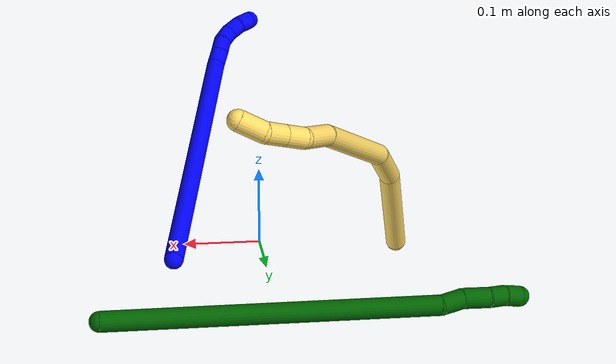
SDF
<sdf version="1.7">
 <world name="default">
  <model name="photoneo_s_sensor">
   <static>1</static>
   <pose>0 0 2 1.57079 1.57079 3.14159</pose>
   <link name="link">
    <inertial><mass>0.1</mass></inertial>
    <sensor name="sensor" type="depth">
     <update_rate>30</update_rate>
     <camera>
      <horizontal_fov>1.22</horizontal_fov>
      <image><width>1920</width><height>1200</height><format>B8G8R8</format></image>
      <clip><near>0.1</near><far>4</far></clip>
      <depth_camera><output>points</output></depth_camera>
     </camera>
     <plugin name="camera_plugin" filename="libgazebo_ros_depth_camera.so">
      <baseline>0.2</baseline>
      <alwaysOn>1</alwaysOn>
      <updateRate>0.0</updateRate>
      <cameraName>camera_ir</cameraName>
      <imageTopicName>/camera/color/image_raw</imageTopicName>
      <cameraInfoTopicName>/camera/color/camera_info</cameraInfoTopicName>
      <depthImageTopicName>/camera/depth/image_raw</depthImageTopicName>
      <depthImageCameraInfoTopicName>/camera/depth/camera_info</depthImageCameraInfoTopicName>
      <pointCloudTopicName>/camera/depth/points</pointCloudTopicName>
      <frameName>fr_optical</frameName>
      <pointCloudCutoff>0.1</pointCloudCutoff>
      <pointCloudCutoffMax>2.0</pointCloudCutoffMax>
      <distortionK1>0</distortionK1>
      <distortionK2>0</distortionK2>
      <distortionK3>0</distortionK3>
      <distortionT1>0</distortionT1>
      <distortionT2>0</distortionT2>
      <CxPrime>0</CxPrime>
      <Cx>0</Cx>
      <Cy>0</Cy>
      <focalLength>0</focalLength>
      <hackBaseline>0</hackBaseline>
     </plugin>
    </sensor>
   </link>
  </model>
  <model name="bin">
   <static>1</static>
   <link name="bottom">
    <collision name="collision-bottom">
     <pose>0 0 -0.01 0 -0 0</pose>
     <geometry><box><size>0.8 0.6 0.02</size></box></geometry>
     <surface>
      <friction><ode><mu>100</mu><mu2>100</mu2></ode></friction>
      <contact><collide_bitmask>65535</collide_bitmask></contact>
     </surface>
    </collision>
   </link>
   <link name="west_wall">
    <collision name="collision-west_wall">
     <pose>-0.41 0 0.1 0 -0 0</pose>
     <geometry><box><size>0.02 0.6 0.2</size></box></geometry>
     <surface>
      <friction><ode><mu>100</mu><mu2>100</mu2></ode></friction>
      <contact><collide_bitmask>65535</collide_bitmask></contact>
     </surface>
    </collision>
   </link>
   <link name="east_wall">
    <collision name="collision-east_wall">
     <pose>0.41 0 0.1 0 -0 0</pose>
     <geometry><box><size>0.02 0.6 0.2</size></box></geometry>
     <surface>
      <friction><ode><mu>100</mu><mu2>100</mu2></ode></friction>
      <contact><collide_bitmask>65535</collide_bitmask></contact>
     </surface>
    </collision>
   </link>
   <link name="south_wall">
    <collision name="collision-south_wall">
     <pose>0 -0.31 0.1 0 -0 0</pose>
     <geometry><box><size>0.8 0.02 0.2</size></box></geometry>
     <surface>
      <friction><ode><mu>100</mu><mu2>100</mu2></ode></friction>
      <contact><collide_bitmask>65535</collide_bitmask></contact>
     </surface>
    </collision>
   </link>
   <link name="north_wall">
    <collision name="collision-north_wall">
     <pose>0 0.31 0.1 0 -0 0</pose>
     <geometry><box><size>0.8 0.02 0.2</size></box></geometry>
     <surface>
      <friction><ode><mu>100</mu><mu2>100</mu2></ode></friction>
      <contact><collide_bitmask>65535</collide_bitmask></contact>
     </surface>
    </collision>
   </link>
  </model>
  <model name="1">
   <static>0</static>
   <link name="1">
    <collision name="collision-cylinder-e_1_1_4">
     <pose>-0.019477 -0.105853 0.166045 0.567536 -0.09859 -0.028774</pose>
     <geometry><cylinder><radius>0.0125</radius><length>0.395754</length></cylinder></geometry>
     <surface>
      <friction><ode><mu>1.16</mu><mu2>1.16</mu2><slip1>0</slip1><slip2>0</slip2></ode></friction>
      <contact><ode><kp>1e+06</kp><kd>1</kd><max_vel>0</max_vel><min_depth>0.001</min_depth></ode></contact>
     </surface>
    </collision>
    <visual name="visual-cylinder-e_1_1_4">
     <pose>-0.019477 -0.105853 0.166045 0.567536 -0.09859 -0.028774</pose>
     <geometry><cylinder><radius>0.0125</radius><length>0.395754</length></cylinder></geometry>
     <material><ambient>0 0 1 1</ambient></material>
    </visual>
    <collision name="collision-cylinder-e_2_4_5">
     <pose>-0.043565 -0.217752 0.340475 0.624657 -0.419572 -0.137286</pose>
     <geometry><cylinder><radius>0.0125</radius><length>0.022637</length></cylinder></geometry>
     <surface>
      <friction><ode><mu>1.16</mu><mu2>1.16</mu2><slip1>0</slip1><slip2>0</slip2></ode></friction>
      <contact><ode><kp>1e+06</kp><kd>1</kd><max_vel>0</max_vel><min_depth>0.001</min_depth></ode></contact>
     </surface>
    </collision>
    <visual name="visual-cylinder-e_2_4_5">
     <pose>-0.043565 -0.217752 0.340475 0.624657 -0.419572 -0.137286</pose>
     <geometry><cylinder><radius>0.0125</radius><length>0.022637</length></cylinder></geometry>
     <material><ambient>0 0 1 1</ambient></material>
    </visual>
    <collision name="collision-cylinder-e_3_5_6">
     <pose>-0.052027 -0.229057 0.356844 0.582485 -0.382924 -0.116081</pose>
     <geometry><cylinder><radius>0.0125</radius><length>0.020616</length></cylinder></geometry>
     <surface>
      <friction><ode><mu>1.16</mu><mu2>1.16</mu2><slip1>0</slip1><slip2>0</slip2></ode></friction>
      <contact><ode><kp>1e+06</kp><kd>1</kd><max_vel>0</max_vel><min_depth>0.001</min_depth></ode></contact>
     </surface>
    </collision>
    <visual name="visual-cylinder-e_3_5_6">
     <pose>-0.052027 -0.229057 0.356844 0.582485 -0.382924 -0.116081</pose>
     <geometry><cylinder><radius>0.0125</radius><length>0.020616</length></cylinder></geometry>
     <material><ambient>0 0 1 1</ambient></material>
    </visual>
    <collision name="collision-cylinder-e_4_6_7">
     <pose>-0.058183 -0.242253 0.371256 0.890113 -0.22199 -0.10622</pose>
     <geometry><cylinder><radius>0.0125</radius><length>0.020939</length></cylinder></geometry>
     <surface>
      <friction><ode><mu>1.16</mu><mu2>1.16</mu2><slip1>0</slip1><slip2>0</slip2></ode></friction>
      <contact><ode><kp>1e+06</kp><kd>1</kd><max_vel>0</max_vel><min_depth>0.001</min_depth></ode></contact>
     </surface>
    </collision>
    <visual name="visual-cylinder-e_4_6_7">
     <pose>-0.058183 -0.242253 0.371256 0.890113 -0.22199 -0.10622</pose>
     <geometry><cylinder><radius>0.0125</radius><length>0.020939</length></cylinder></geometry>
     <material><ambient>0 0 1 1</ambient></material>
    </visual>
    <collision name="collision-cylinder-e_5_7_8">
     <pose>-0.064716 -0.258804 0.380503 1.25443 -0.436388 -0.318711</pose>
     <geometry><cylinder><radius>0.0125</radius><length>0.020004</length></cylinder></geometry>
     <surface>
      <friction><ode><mu>1.16</mu><mu2>1.16</mu2><slip1>0</slip1><slip2>0</slip2></ode></friction>
      <contact><ode><kp>1e+06</kp><kd>1</kd><max_vel>0</max_vel><min_depth>0.001</min_depth></ode></contact>
     </surface>
    </collision>
    <visual name="visual-cylinder-e_5_7_8">
     <pose>-0.064716 -0.258804 0.380503 1.25443 -0.436388 -0.318711</pose>
     <geometry><cylinder><radius>0.0125</radius><length>0.020004</length></cylinder></geometry>
     <material><ambient>0 0 1 1</ambient></material>
    </visual>
    <collision name="collision-cylinder-e_6_8_2">
     <pose>-0.070912 -0.27694 0.385771 1.31911 -0.197647 -0.153453</pose>
     <geometry><cylinder><radius>0.0125</radius><length>0.020051</length></cylinder></geometry>
     <surface>
      <friction><ode><mu>1.16</mu><mu2>1.16</mu2><slip1>0</slip1><slip2>0</slip2></ode></friction>
      <contact><ode><kp>1e+06</kp><kd>1</kd><max_vel>0</max_vel><min_depth>0.001</min_depth></ode></contact>
     </surface>
    </collision>
    <visual name="visual-cylinder-e_6_8_2">
     <pose>-0.070912 -0.27694 0.385771 1.31911 -0.197647 -0.153453</pose>
     <geometry><cylinder><radius>0.0125</radius><length>0.020051</length></cylinder></geometry>
     <material><ambient>0 0 1 1</ambient></material>
    </visual>
    <collision name="collision-sphere-2">
     <pose>-0.072881 -0.28646 0.388219 0 -0 0</pose>
     <geometry><sphere><radius>0.0125</radius></sphere></geometry>
     <surface>
      <friction><ode><mu>1.16</mu><mu2>1.16</mu2><slip1>0</slip1><slip2>0</slip2></ode></friction>
      <contact><ode><kp>1e+06</kp><kd>1</kd><max_vel>0</max_vel><min_depth>0.001</min_depth></ode></contact>
     </surface>
    </collision>
    <visual name="visual-sphere-2">
     <pose>-0.072881 -0.28646 0.388219 0 -0 0</pose>
     <geometry><sphere><radius>0.0125</radius></sphere></geometry>
     <material><ambient>0 0 1 1</ambient></material>
    </visual>
    <collision name="collision-sphere-4">
     <pose>-0.038954 -0.211707 0.33209 0 -0 0</pose>
     <geometry><sphere><radius>0.0125</radius></sphere></geometry>
     <surface>
      <friction><ode><mu>1.16</mu><mu2>1.16</mu2><slip1>0</slip1><slip2>0</slip2></ode></friction>
      <contact><ode><kp>1e+06</kp><kd>1</kd><max_vel>0</max_vel><min_depth>0.001</min_depth></ode></contact>
     </surface>
    </collision>
    <visual name="visual-sphere-4">
     <pose>-0.038954 -0.211707 0.33209 0 -0 0</pose>
     <geometry><sphere><radius>0.0125</radius></sphere></geometry>
     <material><ambient>0 0 1 1</ambient></material>
    </visual>
    <collision name="collision-sphere-1">
     <geometry><sphere><radius>0.0125</radius></sphere></geometry>
     <surface>
      <friction><ode><mu>1.16</mu><mu2>1.16</mu2><slip1>0</slip1><slip2>0</slip2></ode></friction>
      <contact><ode><kp>1e+06</kp><kd>1</kd><max_vel>0</max_vel><min_depth>0.001</min_depth></ode></contact>
     </surface>
    </collision>
    <visual name="visual-sphere-1">
     <geometry><sphere><radius>0.0125</radius></sphere></geometry>
     <material><ambient>0 0 1 1</ambient></material>
    </visual>
    <collision name="collision-sphere-8">
     <pose>-0.068944 -0.267419 0.383323 0 -0 0</pose>
     <geometry><sphere><radius>0.0125</radius></sphere></geometry>
     <surface>
      <friction><ode><mu>1.16</mu><mu2>1.16</mu2><slip1>0</slip1><slip2>0</slip2></ode></friction>
      <contact><ode><kp>1e+06</kp><kd>1</kd><max_vel>0</max_vel><min_depth>0.001</min_depth></ode></contact>
     </surface>
    </collision>
    <visual name="visual-sphere-8">
     <pose>-0.068944 -0.267419 0.383323 0 -0 0</pose>
     <geometry><sphere><radius>0.0125</radius></sphere></geometry>
     <material><ambient>0 0 1 1</ambient></material>
    </visual>
    <collision name="collision-sphere-5">
     <pose>-0.048176 -0.223797 0.34886 0 -0 0</pose>
     <geometry><sphere><radius>0.0125</radius></sphere></geometry>
     <surface>
      <friction><ode><mu>1.16</mu><mu2>1.16</mu2><slip1>0</slip1><slip2>0</slip2></ode></friction>
      <contact><ode><kp>1e+06</kp><kd>1</kd><max_vel>0</max_vel><min_depth>0.001</min_depth></ode></contact>
     </surface>
    </collision>
    <visual name="visual-sphere-5">
     <pose>-0.048176 -0.223797 0.34886 0 -0 0</pose>
     <geometry><sphere><radius>0.0125</radius></sphere></geometry>
     <material><ambient>0 0 1 1</ambient></material>
    </visual>
    <collision name="collision-sphere-6">
     <pose>-0.055878 -0.234316 0.364829 0 -0 0</pose>
     <geometry><sphere><radius>0.0125</radius></sphere></geometry>
     <surface>
      <friction><ode><mu>1.16</mu><mu2>1.16</mu2><slip1>0</slip1><slip2>0</slip2></ode></friction>
      <contact><ode><kp>1e+06</kp><kd>1</kd><max_vel>0</max_vel><min_depth>0.001</min_depth></ode></contact>
     </surface>
    </collision>
    <visual name="visual-sphere-6">
     <pose>-0.055878 -0.234316 0.364829 0 -0 0</pose>
     <geometry><sphere><radius>0.0125</radius></sphere></geometry>
     <material><ambient>0 0 1 1</ambient></material>
    </visual>
    <collision name="collision-sphere-7">
     <pose>-0.060489 -0.250189 0.377683 0 -0 0</pose>
     <geometry><sphere><radius>0.0125</radius></sphere></geometry>
     <surface>
      <friction><ode><mu>1.16</mu><mu2>1.16</mu2><slip1>0</slip1><slip2>0</slip2></ode></friction>
      <contact><ode><kp>1e+06</kp><kd>1</kd><max_vel>0</max_vel><min_depth>0.001</min_depth></ode></contact>
     </surface>
    </collision>
    <visual name="visual-sphere-7">
     <pose>-0.060489 -0.250189 0.377683 0 -0 0</pose>
     <geometry><sphere><radius>0.0125</radius></sphere></geometry>
     <material><ambient>0 0 1 1</ambient></material>
    </visual>
    <inertial>
     <pose>-0.027403 -0.134692 0.207794 0 -0 0</pose>
     <mass>0.5</mass>
     <inertia>
      <ixx>0.005006</ixx>
      <ixy>0</ixy>
      <ixz>0</ixz>
      <iyy>0.004208</iyy>
      <iyz>0</iyz>
      <izz>0.00332</izz>
     </inertia>
    </inertial>
   </link>
   <pose>0.116937 0.088516 0.011497 0.10706 1.12158 -1.03496</pose>
  </model>
  <model name="5">
   <static>0</static>
   <link name="5">
    <collision name="collision-cylinder-e_1_1_4">
     <pose>-0.002547 0.000546 0.082357 -0.00663 -0.030918 0.000103</pose>
     <geometry><cylinder><radius>0.0125</radius><length>0.164797</length></cylinder></geometry>
     <surface>
      <friction><ode><mu>1.16</mu><mu2>1.16</mu2><slip1>0</slip1><slip2>0</slip2></ode></friction>
      <contact><ode><kp>1e+06</kp><kd>1</kd><max_vel>0</max_vel><min_depth>0.001</min_depth></ode></contact>
     </surface>
    </collision>
    <visual name="visual-cylinder-e_1_1_4">
     <pose>-0.002547 0.000546 0.082357 -0.00663 -0.030918 0.000103</pose>
     <geometry><cylinder><radius>0.0125</radius><length>0.164797</length></cylinder></geometry>
     <material><ambient>1 0.858824 0.4 1</ambient></material>
    </visual>
    <collision name="collision-cylinder-e_2_4_5">
     <pose>-0.00467 0.009712 0.199025 -0.246144 0.011998 -0.001484</pose>
     <geometry><cylinder><radius>0.0125</radius><length>0.070757</length></cylinder></geometry>
     <surface>
      <friction><ode><mu>1.16</mu><mu2>1.16</mu2><slip1>0</slip1><slip2>0</slip2></ode></friction>
      <contact><ode><kp>1e+06</kp><kd>1</kd><max_vel>0</max_vel><min_depth>0.001</min_depth></ode></contact>
     </surface>
    </collision>
    <visual name="visual-cylinder-e_2_4_5">
     <pose>-0.00467 0.009712 0.199025 -0.246144 0.011998 -0.001484</pose>
     <geometry><cylinder><radius>0.0125</radius><length>0.070757</length></cylinder></geometry>
     <material><ambient>1 0.858824 0.4 1</ambient></material>
    </visual>
    <collision name="collision-cylinder-e_3_5_6">
     <pose>0.007532 0.050425 0.29118 -0.506527 0.176186 -0.045711</pose>
     <geometry><cylinder><radius>0.0125</radius><length>0.134385</length></cylinder></geometry>
     <surface>
      <friction><ode><mu>1.16</mu><mu2>1.16</mu2><slip1>0</slip1><slip2>0</slip2></ode></friction>
      <contact><ode><kp>1e+06</kp><kd>1</kd><max_vel>0</max_vel><min_depth>0.001</min_depth></ode></contact>
     </surface>
    </collision>
    <visual name="visual-cylinder-e_3_5_6">
     <pose>0.007532 0.050425 0.29118 -0.506527 0.176186 -0.045711</pose>
     <geometry><cylinder><radius>0.0125</radius><length>0.134385</length></cylinder></geometry>
     <material><ambient>1 0.858824 0.4 1</ambient></material>
    </visual>
    <collision name="collision-cylinder-e_4_6_7">
     <pose>0.023495 0.098132 0.365142 -0.769539 0.184448 -0.07487</pose>
     <geometry><cylinder><radius>0.0125</radius><length>0.045652</length></cylinder></geometry>
     <surface>
      <friction><ode><mu>1.16</mu><mu2>1.16</mu2><slip1>0</slip1><slip2>0</slip2></ode></friction>
      <contact><ode><kp>1e+06</kp><kd>1</kd><max_vel>0</max_vel><min_depth>0.001</min_depth></ode></contact>
     </surface>
    </collision>
    <visual name="visual-cylinder-e_4_6_7">
     <pose>0.023495 0.098132 0.365142 -0.769539 0.184448 -0.07487</pose>
     <geometry><cylinder><radius>0.0125</radius><length>0.045652</length></cylinder></geometry>
     <material><ambient>1 0.858824 0.4 1</ambient></material>
    </visual>
    <collision name="collision-cylinder-e_5_7_8">
     <pose>0.035353 0.120652 0.38934 -0.707216 0.625083 -0.237429</pose>
     <geometry><cylinder><radius>0.0125</radius><length>0.026219</length></cylinder></geometry>
     <surface>
      <friction><ode><mu>1.16</mu><mu2>1.16</mu2><slip1>0</slip1><slip2>0</slip2></ode></friction>
      <contact><ode><kp>1e+06</kp><kd>1</kd><max_vel>0</max_vel><min_depth>0.001</min_depth></ode></contact>
     </surface>
    </collision>
    <visual name="visual-cylinder-e_5_7_8">
     <pose>0.035353 0.120652 0.38934 -0.707216 0.625083 -0.237429</pose>
     <geometry><cylinder><radius>0.0125</radius><length>0.026219</length></cylinder></geometry>
     <material><ambient>1 0.858824 0.4 1</ambient></material>
    </visual>
    <collision name="collision-cylinder-e_6_8_9">
     <pose>0.050088 0.134484 0.405693 -0.697005 0.579719 -0.215892</pose>
     <geometry><cylinder><radius>0.0125</radius><length>0.025789</length></cylinder></geometry>
     <surface>
      <friction><ode><mu>1.16</mu><mu2>1.16</mu2><slip1>0</slip1><slip2>0</slip2></ode></friction>
      <contact><ode><kp>1e+06</kp><kd>1</kd><max_vel>0</max_vel><min_depth>0.001</min_depth></ode></contact>
     </surface>
    </collision>
    <visual name="visual-cylinder-e_6_8_9">
     <pose>0.050088 0.134484 0.405693 -0.697005 0.579719 -0.215892</pose>
     <geometry><cylinder><radius>0.0125</radius><length>0.025789</length></cylinder></geometry>
     <material><ambient>1 0.858824 0.4 1</ambient></material>
    </visual>
    <collision name="collision-cylinder-e_7_9_2">
     <pose>0.070549 0.14449 0.422535 -0.345196 0.97378 -0.184062</pose>
     <geometry><cylinder><radius>0.0125</radius><length>0.0324</length></cylinder></geometry>
     <surface>
      <friction><ode><mu>1.16</mu><mu2>1.16</mu2><slip1>0</slip1><slip2>0</slip2></ode></friction>
      <contact><ode><kp>1e+06</kp><kd>1</kd><max_vel>0</max_vel><min_depth>0.001</min_depth></ode></contact>
     </surface>
    </collision>
    <visual name="visual-cylinder-e_7_9_2">
     <pose>0.070549 0.14449 0.422535 -0.345196 0.97378 -0.184062</pose>
     <geometry><cylinder><radius>0.0125</radius><length>0.0324</length></cylinder></geometry>
     <material><ambient>1 0.858824 0.4 1</ambient></material>
    </visual>
    <collision name="collision-sphere-2">
     <pose>0.083947 0.147572 0.431105 0 -0 0</pose>
     <geometry><sphere><radius>0.0125</radius></sphere></geometry>
     <surface>
      <friction><ode><mu>1.16</mu><mu2>1.16</mu2><slip1>0</slip1><slip2>0</slip2></ode></friction>
      <contact><ode><kp>1e+06</kp><kd>1</kd><max_vel>0</max_vel><min_depth>0.001</min_depth></ode></contact>
     </surface>
    </collision>
    <visual name="visual-sphere-2">
     <pose>0.083947 0.147572 0.431105 0 -0 0</pose>
     <geometry><sphere><radius>0.0125</radius></sphere></geometry>
     <material><ambient>1 0.858824 0.4 1</ambient></material>
    </visual>
    <collision name="collision-sphere-9">
     <pose>0.057151 0.141409 0.413964 0 -0 0</pose>
     <geometry><sphere><radius>0.0125</radius></sphere></geometry>
     <surface>
      <friction><ode><mu>1.16</mu><mu2>1.16</mu2><slip1>0</slip1><slip2>0</slip2></ode></friction>
      <contact><ode><kp>1e+06</kp><kd>1</kd><max_vel>0</max_vel><min_depth>0.001</min_depth></ode></contact>
     </surface>
    </collision>
    <visual name="visual-sphere-9">
     <pose>0.057151 0.141409 0.413964 0 -0 0</pose>
     <geometry><sphere><radius>0.0125</radius></sphere></geometry>
     <material><ambient>1 0.858824 0.4 1</ambient></material>
    </visual>
    <collision name="collision-sphere-4">
     <pose>-0.005094 0.001092 0.164715 0 -0 0</pose>
     <geometry><sphere><radius>0.0125</radius></sphere></geometry>
     <surface>
      <friction><ode><mu>1.16</mu><mu2>1.16</mu2><slip1>0</slip1><slip2>0</slip2></ode></friction>
      <contact><ode><kp>1e+06</kp><kd>1</kd><max_vel>0</max_vel><min_depth>0.001</min_depth></ode></contact>
     </surface>
    </collision>
    <visual name="visual-sphere-4">
     <pose>-0.005094 0.001092 0.164715 0 -0 0</pose>
     <geometry><sphere><radius>0.0125</radius></sphere></geometry>
     <material><ambient>1 0.858824 0.4 1</ambient></material>
    </visual>
    <collision name="collision-sphere-1">
     <geometry><sphere><radius>0.0125</radius></sphere></geometry>
     <surface>
      <friction><ode><mu>1.16</mu><mu2>1.16</mu2><slip1>0</slip1><slip2>0</slip2></ode></friction>
      <contact><ode><kp>1e+06</kp><kd>1</kd><max_vel>0</max_vel><min_depth>0.001</min_depth></ode></contact>
     </surface>
    </collision>
    <visual name="visual-sphere-1">
     <geometry><sphere><radius>0.0125</radius></sphere></geometry>
     <material><ambient>1 0.858824 0.4 1</ambient></material>
    </visual>
    <collision name="collision-sphere-8">
     <pose>0.043024 0.127559 0.397421 0 -0 0</pose>
     <geometry><sphere><radius>0.0125</radius></sphere></geometry>
     <surface>
      <friction><ode><mu>1.16</mu><mu2>1.16</mu2><slip1>0</slip1><slip2>0</slip2></ode></friction>
      <contact><ode><kp>1e+06</kp><kd>1</kd><max_vel>0</max_vel><min_depth>0.001</min_depth></ode></contact>
     </surface>
    </collision>
    <visual name="visual-sphere-8">
     <pose>0.043024 0.127559 0.397421 0 -0 0</pose>
     <geometry><sphere><radius>0.0125</radius></sphere></geometry>
     <material><ambient>1 0.858824 0.4 1</ambient></material>
    </visual>
    <collision name="collision-sphere-5">
     <pose>-0.004245 0.018332 0.233334 0 -0 0</pose>
     <geometry><sphere><radius>0.0125</radius></sphere></geometry>
     <surface>
      <friction><ode><mu>1.16</mu><mu2>1.16</mu2><slip1>0</slip1><slip2>0</slip2></ode></friction>
      <contact><ode><kp>1e+06</kp><kd>1</kd><max_vel>0</max_vel><min_depth>0.001</min_depth></ode></contact>
     </surface>
    </collision>
    <visual name="visual-sphere-5">
     <pose>-0.004245 0.018332 0.233334 0 -0 0</pose>
     <geometry><sphere><radius>0.0125</radius></sphere></geometry>
     <material><ambient>1 0.858824 0.4 1</ambient></material>
    </visual>
    <collision name="collision-sphere-6">
     <pose>0.019309 0.082518 0.349026 0 -0 0</pose>
     <geometry><sphere><radius>0.0125</radius></sphere></geometry>
     <surface>
      <friction><ode><mu>1.16</mu><mu2>1.16</mu2><slip1>0</slip1><slip2>0</slip2></ode></friction>
      <contact><ode><kp>1e+06</kp><kd>1</kd><max_vel>0</max_vel><min_depth>0.001</min_depth></ode></contact>
     </surface>
    </collision>
    <visual name="visual-sphere-6">
     <pose>0.019309 0.082518 0.349026 0 -0 0</pose>
     <geometry><sphere><radius>0.0125</radius></sphere></geometry>
     <material><ambient>1 0.858824 0.4 1</ambient></material>
    </visual>
    <collision name="collision-sphere-7">
     <pose>0.027682 0.113745 0.381258 0 -0 0</pose>
     <geometry><sphere><radius>0.0125</radius></sphere></geometry>
     <surface>
      <friction><ode><mu>1.16</mu><mu2>1.16</mu2><slip1>0</slip1><slip2>0</slip2></ode></friction>
      <contact><ode><kp>1e+06</kp><kd>1</kd><max_vel>0</max_vel><min_depth>0.001</min_depth></ode></contact>
     </surface>
    </collision>
    <visual name="visual-sphere-7">
     <pose>0.027682 0.113745 0.381258 0 -0 0</pose>
     <geometry><sphere><radius>0.0125</radius></sphere></geometry>
     <material><ambient>1 0.858824 0.4 1</ambient></material>
    </visual>
    <inertial>
     <pose>0.011678 0.046693 0.235631 0 -0 0</pose>
     <mass>0.5</mass>
     <inertia>
      <ixx>0.000626</ixx>
      <ixy>0</ixy>
      <ixz>0</ixz>
      <iyy>0.000608</iyy>
      <iyz>0</iyz>
      <izz>-0.000119</izz>
     </inertia>
    </inertial>
   </link>
   <pose>-0.174355 0.052865 0.011497 -0.676471 -0.205254 -0.547287</pose>
  </model>
  <model name="6">
   <static>0</static>
   <link name="6">
    <collision name="collision-cylinder-e_1_1_4">
     <pose>-0.179002 -0.042706 0.077264 0.504932 -1.11262 -0.318112</pose>
     <geometry><cylinder><radius>0.0125</radius><length>0.399175</length></cylinder></geometry>
     <surface>
      <friction><ode><mu>1.16</mu><mu2>1.16</mu2><slip1>0</slip1><slip2>0</slip2></ode></friction>
      <contact><ode><kp>1e+06</kp><kd>1</kd><max_vel>0</max_vel><min_depth>0.001</min_depth></ode></contact>
     </surface>
    </collision>
    <visual name="visual-cylinder-e_1_1_4">
     <pose>-0.179002 -0.042706 0.077264 0.504932 -1.11262 -0.318112</pose>
     <geometry><cylinder><radius>0.0125</radius><length>0.399175</length></cylinder></geometry>
     <material><ambient>0 0.392157 0.003922 1</ambient></material>
    </visual>
    <collision name="collision-cylinder-e_2_4_5">
     <pose>-0.368834 -0.085949 0.162725 0.065565 -0.921867 -0.032569</pose>
     <geometry><cylinder><radius>0.0125</radius><length>0.027185</length></cylinder></geometry>
     <surface>
      <friction><ode><mu>1.16</mu><mu2>1.16</mu2><slip1>0</slip1><slip2>0</slip2></ode></friction>
      <contact><ode><kp>1e+06</kp><kd>1</kd><max_vel>0</max_vel><min_depth>0.001</min_depth></ode></contact>
     </surface>
    </collision>
    <visual name="visual-cylinder-e_2_4_5">
     <pose>-0.368834 -0.085949 0.162725 0.065565 -0.921867 -0.032569</pose>
     <geometry><cylinder><radius>0.0125</radius><length>0.027185</length></cylinder></geometry>
     <material><ambient>0 0.392157 0.003922 1</ambient></material>
    </visual>
    <collision name="collision-cylinder-e_3_5_6">
     <pose>-0.393636 -0.090753 0.178695 0.501829 -1.00534 -0.27999</pose>
     <geometry><cylinder><radius>0.0125</radius><length>0.033096</length></cylinder></geometry>
     <surface>
      <friction><ode><mu>1.16</mu><mu2>1.16</mu2><slip1>0</slip1><slip2>0</slip2></ode></friction>
      <contact><ode><kp>1e+06</kp><kd>1</kd><max_vel>0</max_vel><min_depth>0.001</min_depth></ode></contact>
     </surface>
    </collision>
    <visual name="visual-cylinder-e_3_5_6">
     <pose>-0.393636 -0.090753 0.178695 0.501829 -1.00534 -0.27999</pose>
     <geometry><cylinder><radius>0.0125</radius><length>0.033096</length></cylinder></geometry>
     <material><ambient>0 0.392157 0.003922 1</ambient></material>
    </visual>
    <collision name="collision-cylinder-e_4_6_7">
     <pose>-0.415368 -0.09726 0.192721 0.344242 -0.862767 -0.159697</pose>
     <geometry><cylinder><radius>0.0125</radius><length>0.02043</length></cylinder></geometry>
     <surface>
      <friction><ode><mu>1.16</mu><mu2>1.16</mu2><slip1>0</slip1><slip2>0</slip2></ode></friction>
      <contact><ode><kp>1e+06</kp><kd>1</kd><max_vel>0</max_vel><min_depth>0.001</min_depth></ode></contact>
     </surface>
    </collision>
    <visual name="visual-cylinder-e_4_6_7">
     <pose>-0.415368 -0.09726 0.192721 0.344242 -0.862767 -0.159697</pose>
     <geometry><cylinder><radius>0.0125</radius><length>0.02043</length></cylinder></geometry>
     <material><ambient>0 0.392157 0.003922 1</ambient></material>
    </visual>
    <collision name="collision-cylinder-e_5_7_2">
     <pose>-0.430248 -0.103401 0.204911 0.581186 -0.786695 -0.24694</pose>
     <geometry><cylinder><radius>0.0125</radius><length>0.020113</length></cylinder></geometry>
     <surface>
      <friction><ode><mu>1.16</mu><mu2>1.16</mu2><slip1>0</slip1><slip2>0</slip2></ode></friction>
      <contact><ode><kp>1e+06</kp><kd>1</kd><max_vel>0</max_vel><min_depth>0.001</min_depth></ode></contact>
     </surface>
    </collision>
    <visual name="visual-cylinder-e_5_7_2">
     <pose>-0.430248 -0.103401 0.204911 0.581186 -0.786695 -0.24694</pose>
     <geometry><cylinder><radius>0.0125</radius><length>0.020113</length></cylinder></geometry>
     <material><ambient>0 0.392157 0.003922 1</ambient></material>
    </visual>
    <collision name="collision-sphere-2">
     <pose>-0.437368 -0.1073 0.210846 0 -0 0</pose>
     <geometry><sphere><radius>0.0125</radius></sphere></geometry>
     <surface>
      <friction><ode><mu>1.16</mu><mu2>1.16</mu2><slip1>0</slip1><slip2>0</slip2></ode></friction>
      <contact><ode><kp>1e+06</kp><kd>1</kd><max_vel>0</max_vel><min_depth>0.001</min_depth></ode></contact>
     </surface>
    </collision>
    <visual name="visual-sphere-2">
     <pose>-0.437368 -0.1073 0.210846 0 -0 0</pose>
     <geometry><sphere><radius>0.0125</radius></sphere></geometry>
     <material><ambient>0 0.392157 0.003922 1</ambient></material>
    </visual>
    <collision name="collision-sphere-7">
     <pose>-0.423128 -0.099501 0.198975 0 -0 0</pose>
     <geometry><sphere><radius>0.0125</radius></sphere></geometry>
     <surface>
      <friction><ode><mu>1.16</mu><mu2>1.16</mu2><slip1>0</slip1><slip2>0</slip2></ode></friction>
      <contact><ode><kp>1e+06</kp><kd>1</kd><max_vel>0</max_vel><min_depth>0.001</min_depth></ode></contact>
     </surface>
    </collision>
    <visual name="visual-sphere-7">
     <pose>-0.423128 -0.099501 0.198975 0 -0 0</pose>
     <geometry><sphere><radius>0.0125</radius></sphere></geometry>
     <material><ambient>0 0.392157 0.003922 1</ambient></material>
    </visual>
    <collision name="collision-sphere-6">
     <pose>-0.407608 -0.095018 0.186468 0 -0 0</pose>
     <geometry><sphere><radius>0.0125</radius></sphere></geometry>
     <surface>
      <friction><ode><mu>1.16</mu><mu2>1.16</mu2><slip1>0</slip1><slip2>0</slip2></ode></friction>
      <contact><ode><kp>1e+06</kp><kd>1</kd><max_vel>0</max_vel><min_depth>0.001</min_depth></ode></contact>
     </surface>
    </collision>
    <visual name="visual-sphere-6">
     <pose>-0.407608 -0.095018 0.186468 0 -0 0</pose>
     <geometry><sphere><radius>0.0125</radius></sphere></geometry>
     <material><ambient>0 0.392157 0.003922 1</ambient></material>
    </visual>
    <collision name="collision-sphere-5">
     <pose>-0.379664 -0.086488 0.170921 0 -0 0</pose>
     <geometry><sphere><radius>0.0125</radius></sphere></geometry>
     <surface>
      <friction><ode><mu>1.16</mu><mu2>1.16</mu2><slip1>0</slip1><slip2>0</slip2></ode></friction>
      <contact><ode><kp>1e+06</kp><kd>1</kd><max_vel>0</max_vel><min_depth>0.001</min_depth></ode></contact>
     </surface>
    </collision>
    <visual name="visual-sphere-5">
     <pose>-0.379664 -0.086488 0.170921 0 -0 0</pose>
     <geometry><sphere><radius>0.0125</radius></sphere></geometry>
     <material><ambient>0 0.392157 0.003922 1</ambient></material>
    </visual>
    <collision name="collision-sphere-1">
     <geometry><sphere><radius>0.0125</radius></sphere></geometry>
     <surface>
      <friction><ode><mu>1.16</mu><mu2>1.16</mu2><slip1>0</slip1><slip2>0</slip2></ode></friction>
      <contact><ode><kp>1e+06</kp><kd>1</kd><max_vel>0</max_vel><min_depth>0.001</min_depth></ode></contact>
     </surface>
    </collision>
    <visual name="visual-sphere-1">
     <geometry><sphere><radius>0.0125</radius></sphere></geometry>
     <material><ambient>0 0.392157 0.003922 1</ambient></material>
    </visual>
    <collision name="collision-sphere-4">
     <pose>-0.358004 -0.085411 0.154528 0 -0 0</pose>
     <geometry><sphere><radius>0.0125</radius></sphere></geometry>
     <surface>
      <friction><ode><mu>1.16</mu><mu2>1.16</mu2><slip1>0</slip1><slip2>0</slip2></ode></friction>
      <contact><ode><kp>1e+06</kp><kd>1</kd><max_vel>0</max_vel><min_depth>0.001</min_depth></ode></contact>
     </surface>
    </collision>
    <visual name="visual-sphere-4">
     <pose>-0.358004 -0.085411 0.154528 0 -0 0</pose>
     <geometry><sphere><radius>0.0125</radius></sphere></geometry>
     <material><ambient>0 0.392157 0.003922 1</ambient></material>
    </visual>
    <inertial>
     <pose>-0.223295 -0.052908 0.098477 0 -0 0</pose>
     <mass>0.5</mass>
     <inertia>
      <ixx>0.001469</ixx>
      <ixy>0</ixy>
      <ixz>0</ixz>
      <iyy>0.004405</iyy>
      <iyz>0</iyz>
      <izz>0.005932</izz>
     </inertia>
    </inertial>
   </link>
   <pose>0.210186 0.287788 0.012257 1.50752 0.211115 -0.411071</pose>
  </model>
 </world>
</sdf>
